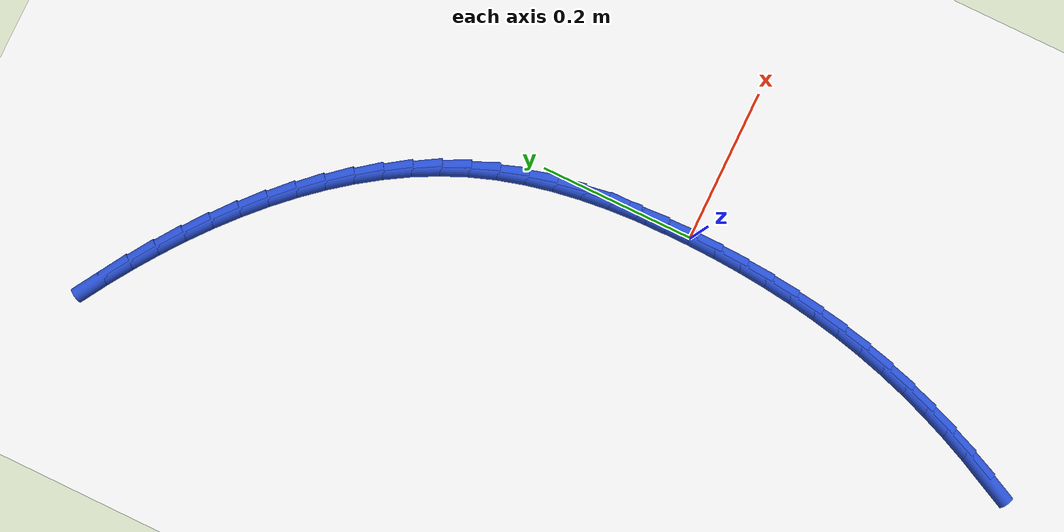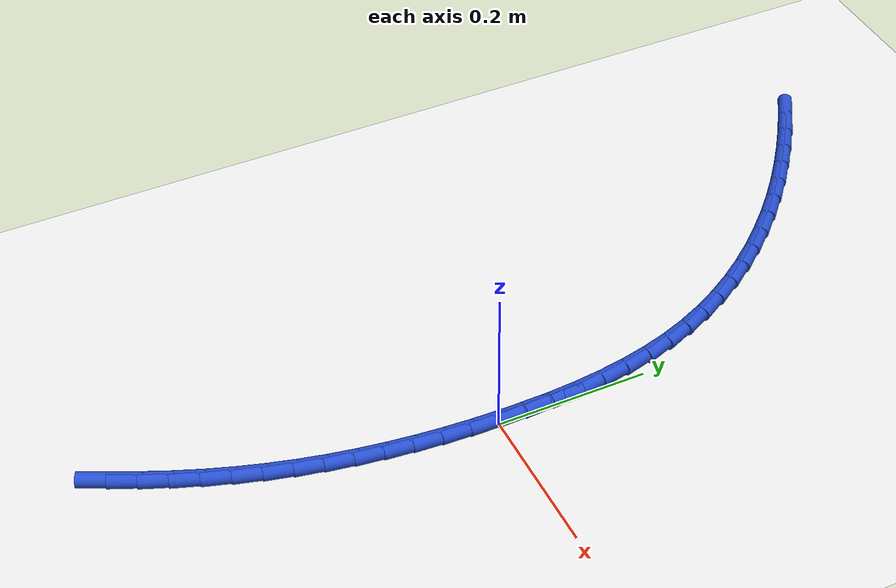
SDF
<sdf version="1.6">
 <world name="default">
  <model name="ground_plane">
   <static>1</static>
   <link name="link">
    <collision name="collision">
     <geometry><plane><normal>0 0 1</normal><size>100 100</size></plane></geometry>
     <surface><friction><ode><mu>100</mu><mu2>50</mu2></ode></friction></surface>
    </collision>
    <visual name="visual">
     <cast_shadows>0</cast_shadows>
     <geometry><plane><normal>0 0 1</normal><size>100 100</size></plane></geometry>
     <material>
      <script><uri>file://media/materials/scripts/gazebo.material</uri><name>Gazebo/WhiteGlow</name></script>
     </material>
    </visual>
   </link>
  </model>
  <model name="line">
   <link name="link_0">
    <pose>7.37257477290143e-18 3.469446951953614e-17 0.01 0 1.57 1.5680438948402413</pose>
    <collision name="collision">
     <geometry><cylinder><radius>0.01</radius><length>0.08</length></cylinder></geometry>
    </collision>
    <visual name="visual">
     <material>
      <script><name>Gazebo/Blue</name><uri>file://media/materials/scripts/gazebo.material</uri></script>
     </material>
     <geometry><cylinder><radius>0.01</radius><length>0.08</length></cylinder></geometry>
    </visual>
   </link>
   <link name="link_1">
    <pose>0.0001003149996280971 0.03644585877352556 0.01 0 1.57 -1.541195006216087</pose>
    <collision name="collision">
     <geometry><cylinder><radius>0.01</radius><length>0.08</length></cylinder></geometry>
    </collision>
    <visual name="visual">
     <material>
      <script><name>Gazebo/Blue</name><uri>file://media/materials/scripts/gazebo.material</uri></script>
     </material>
     <geometry><cylinder><radius>0.01</radius><length>0.08</length></cylinder></geometry>
    </visual>
   </link>
   <link name="link_2">
    <pose>-0.0009796142377771593 0.0729176705978343 0.01 0 1.57 -1.5036603185891484</pose>
    <collision name="collision">
     <geometry><cylinder><radius>0.01</radius><length>0.08</length></cylinder></geometry>
    </collision>
    <visual name="visual">
     <material>
      <script><name>Gazebo/Blue</name><uri>file://media/materials/scripts/gazebo.material</uri></script>
     </material>
     <geometry><cylinder><radius>0.01</radius><length>0.08</length></cylinder></geometry>
    </visual>
   </link>
   <link name="link_3">
    <pose>-0.003423812057419353 0.10926961618761917 0.01 0 1.57 -1.4606070433337586</pose>
    <collision name="collision">
     <geometry><cylinder><radius>0.01</radius><length>0.08</length></cylinder></geometry>
    </collision>
    <visual name="visual">
     <material>
      <script><name>Gazebo/Blue</name><uri>file://media/materials/scripts/gazebo.material</uri></script>
     </material>
     <geometry><cylinder><radius>0.01</radius><length>0.08</length></cylinder></geometry>
    </visual>
   </link>
   <link name="link_4">
    <pose>-0.007416302804502077 0.14535587625757285 0.01 0 1.57 -1.411680642565094</pose>
    <collision name="collision">
     <geometry><cylinder><radius>0.01</radius><length>0.08</length></cylinder></geometry>
    </collision>
    <visual name="visual">
     <material>
      <script><name>Gazebo/Blue</name><uri>file://media/materials/scripts/gazebo.material</uri></script>
     </material>
     <geometry><cylinder><radius>0.01</radius><length>0.08</length></cylinder></geometry>
    </visual>
   </link>
   <link name="link_5">
    <pose>-0.013141110824228922 0.1810306315223883 0.01 0 1.57 -1.356547341380486</pose>
    <collision name="collision">
     <geometry><cylinder><radius>0.01</radius><length>0.08</length></cylinder></geometry>
    </collision>
    <visual name="visual">
     <material>
      <script><name>Gazebo/Blue</name><uri>file://media/materials/scripts/gazebo.material</uri></script>
     </material>
     <geometry><cylinder><radius>0.01</radius><length>0.08</length></cylinder></geometry>
    </visual>
   </link>
   <link name="link_6">
    <pose>-0.020782260461803488 0.2161480626967583 0.01 0 1.57 -1.294946770154717</pose>
    <collision name="collision">
     <geometry><cylinder><radius>0.01</radius><length>0.08</length></cylinder></geometry>
    </collision>
    <visual name="visual">
     <material>
      <script><name>Gazebo/Blue</name><uri>file://media/materials/scripts/gazebo.material</uri></script>
     </material>
     <geometry><cylinder><radius>0.01</radius><length>0.08</length></cylinder></geometry>
    </visual>
   </link>
   <link name="link_7">
    <pose>-0.030523776062429356 0.2505623504953757 0.01 0 1.57 -1.2268920229269533</pose>
    <collision name="collision">
     <geometry><cylinder><radius>0.01</radius><length>0.08</length></cylinder></geometry>
    </collision>
    <visual name="visual">
     <material>
      <script><name>Gazebo/Blue</name><uri>file://media/materials/scripts/gazebo.material</uri></script>
     </material>
     <geometry><cylinder><radius>0.01</radius><length>0.08</length></cylinder></geometry>
    </visual>
   </link>
   <link name="link_8">
    <pose>-0.04254536098203102 0.28412946136138806 0.01 0 1.57 -1.1567805826560806</pose>
    <collision name="collision">
     <geometry><cylinder><radius>0.01</radius><length>0.08</length></cylinder></geometry>
    </collision>
    <visual name="visual">
     <material>
      <script><name>Gazebo/Blue</name><uri>file://media/materials/scripts/gazebo.material</uri></script>
     </material>
     <geometry><cylinder><radius>0.01</radius><length>0.08</length></cylinder></geometry>
    </visual>
   </link>
   <link name="link_9">
    <pose>-0.05688533882825792 0.3167637895245334 0.01 0 1.57 -1.0900268088113938</pose>
    <collision name="collision">
     <geometry><cylinder><radius>0.01</radius><length>0.08</length></cylinder></geometry>
    </collision>
    <visual name="visual">
     <material>
      <script><name>Gazebo/Blue</name><uri>file://media/materials/scripts/gazebo.material</uri></script>
     </material>
     <geometry><cylinder><radius>0.01</radius><length>0.08</length></cylinder></geometry>
    </visual>
   </link>
   <link name="link_10">
    <pose>-0.07341243362507215 0.3484498193682118 0.01 0 1.57 -1.0271024939809505</pose>
    <collision name="collision">
     <geometry><cylinder><radius>0.01</radius><length>0.08</length></cylinder></geometry>
    </collision>
    <visual name="visual">
     <material>
      <script><name>Gazebo/Blue</name><uri>file://media/materials/scripts/gazebo.material</uri></script>
     </material>
     <geometry><cylinder><radius>0.01</radius><length>0.08</length></cylinder></geometry>
    </visual>
   </link>
   <link name="link_11">
    <pose>-0.09198534577649915 0.37917617772149675 0.01 0 1.57 -0.9680378404753012</pose>
    <collision name="collision">
     <geometry><cylinder><radius>0.01</radius><length>0.08</length></cylinder></geometry>
    </collision>
    <visual name="visual">
     <material>
      <script><name>Gazebo/Blue</name><uri>file://media/materials/scripts/gazebo.material</uri></script>
     </material>
     <geometry><cylinder><radius>0.01</radius><length>0.08</length></cylinder></geometry>
    </visual>
   </link>
   <link name="link_12">
    <pose>-0.1124627756865645 0.4089314914134619 0.01 0 1.57 -0.9127543947486471</pose>
    <collision name="collision">
     <geometry><cylinder><radius>0.01</radius><length>0.08</length></cylinder></geometry>
    </collision>
    <visual name="visual">
     <material>
      <script><name>Gazebo/Blue</name><uri>file://media/materials/scripts/gazebo.material</uri></script>
     </material>
     <geometry><cylinder><radius>0.01</radius><length>0.08</length></cylinder></geometry>
    </visual>
   </link>
   <link name="link_13">
    <pose>-0.13470342375929356 0.43770438727318056 0.01 0 1.57 -0.8610939117637058</pose>
    <collision name="collision">
     <geometry><cylinder><radius>0.01</radius><length>0.08</length></cylinder></geometry>
    </collision>
    <visual name="visual">
     <material>
      <script><name>Gazebo/Blue</name><uri>file://media/materials/scripts/gazebo.material</uri></script>
     </material>
     <geometry><cylinder><radius>0.01</radius><length>0.08</length></cylinder></geometry>
    </visual>
   </link>
   <link name="link_14">
    <pose>-0.15856599039871191 0.46548349212972634 0.01 0 1.57 -0.8128439553476126</pose>
    <collision name="collision">
     <geometry><cylinder><radius>0.01</radius><length>0.08</length></cylinder></geometry>
    </collision>
    <visual name="visual">
     <material>
      <script><name>Gazebo/Blue</name><uri>file://media/materials/scripts/gazebo.material</uri></script>
     </material>
     <geometry><cylinder><radius>0.01</radius><length>0.08</length></cylinder></geometry>
    </visual>
   </link>
   <link name="link_15">
    <pose>-0.183909176008845 0.49225743281217255 0.01 0 1.57 -0.7677588171883175</pose>
    <collision name="collision">
     <geometry><cylinder><radius>0.01</radius><length>0.08</length></cylinder></geometry>
    </collision>
    <visual name="visual">
     <material>
      <script><name>Gazebo/Blue</name><uri>file://media/materials/scripts/gazebo.material</uri></script>
     </material>
     <geometry><cylinder><radius>0.01</radius><length>0.08</length></cylinder></geometry>
    </visual>
   </link>
   <link name="link_16">
    <pose>-0.21059168099371825 0.5180148361495929 0.01 0 1.57 -0.7255754857384842</pose>
    <collision name="collision">
     <geometry><cylinder><radius>0.01</radius><length>0.08</length></cylinder></geometry>
    </collision>
    <visual name="visual">
     <material>
      <script><name>Gazebo/Blue</name><uri>file://media/materials/scripts/gazebo.material</uri></script>
     </material>
     <geometry><cylinder><radius>0.01</radius><length>0.08</length></cylinder></geometry>
    </visual>
   </link>
   <link name="link_17">
    <pose>-0.23847220575735723 0.5427443289710607 0.01 0 1.57 -0.6860250698542992</pose>
    <collision name="collision">
     <geometry><cylinder><radius>0.01</radius><length>0.08</length></cylinder></geometry>
    </collision>
    <visual name="visual">
     <material>
      <script><name>Gazebo/Blue</name><uri>file://media/materials/scripts/gazebo.material</uri></script>
     </material>
     <geometry><cylinder><radius>0.01</radius><length>0.08</length></cylinder></geometry>
    </visual>
   </link>
   <link name="link_18">
    <pose>-0.2674094507037874 0.5664345381056497 0.01 0 1.57 -0.6488403851450412</pose>
    <collision name="collision">
     <geometry><cylinder><radius>0.01</radius><length>0.08</length></cylinder></geometry>
    </collision>
    <visual name="visual">
     <material>
      <script><name>Gazebo/Blue</name><uri>file://media/materials/scripts/gazebo.material</uri></script>
     </material>
     <geometry><cylinder><radius>0.01</radius><length>0.08</length></cylinder></geometry>
    </visual>
   </link>
   <link name="link_19">
    <pose>-0.2972621162370341 0.589074090382433 0.01 0 1.57 -0.6137604726472918</pose>
    <collision name="collision">
     <geometry><cylinder><radius>0.01</radius><length>0.08</length></cylinder></geometry>
    </collision>
    <visual name="visual">
     <material>
      <script><name>Gazebo/Blue</name><uri>file://media/materials/scripts/gazebo.material</uri></script>
     </material>
     <geometry><cylinder><radius>0.01</radius><length>0.08</length></cylinder></geometry>
    </visual>
   </link>
   <link name="link_20">
    <pose>-0.327888902761123 0.6106516126304845 0.01 0 1.57 -0.5805327473783956</pose>
    <collision name="collision">
     <geometry><cylinder><radius>0.01</radius><length>0.08</length></cylinder></geometry>
    </collision>
    <visual name="visual">
     <material>
      <script><name>Gazebo/Blue</name><uri>file://media/materials/scripts/gazebo.material</uri></script>
     </material>
     <geometry><cylinder><radius>0.01</radius><length>0.08</length></cylinder></geometry>
    </visual>
   </link>
   <link name="link_21">
    <pose>-0.35914851068007947 0.6311557316788774 0.01 0 1.57 -0.5489133423862994</pose>
    <collision name="collision">
     <geometry><cylinder><radius>0.01</radius><length>0.08</length></cylinder></geometry>
    </collision>
    <visual name="visual">
     <material>
      <script><name>Gazebo/Blue</name><uri>file://media/materials/scripts/gazebo.material</uri></script>
     </material>
     <geometry><cylinder><radius>0.01</radius><length>0.08</length></cylinder></geometry>
    </visual>
   </link>
   <link name="link_217">
    <pose>-0.10842070308020747 -0.45273569907744426 0.01 0 1.57 1.1189467482211832</pose>
    <collision name="collision">
     <geometry><cylinder><radius>0.01</radius><length>0.08</length></cylinder></geometry>
    </collision>
    <visual name="visual">
     <material>
      <script><name>Gazebo/Blue</name><uri>file://media/materials/scripts/gazebo.material</uri></script>
     </material>
     <geometry><cylinder><radius>0.01</radius><length>0.08</length></cylinder></geometry>
    </visual>
   </link>
   <link name="link_218">
    <pose>-0.09266001061775382 -0.420262075236773 0.01 0 1.57 1.154462250749617</pose>
    <collision name="collision">
     <geometry><cylinder><radius>0.01</radius><length>0.08</length></cylinder></geometry>
    </collision>
    <visual name="visual">
     <material>
      <script><name>Gazebo/Blue</name><uri>file://media/materials/scripts/gazebo.material</uri></script>
     </material>
     <geometry><cylinder><radius>0.01</radius><length>0.08</length></cylinder></geometry>
    </visual>
   </link>
   <link name="link_219">
    <pose>-0.07801158600465324 -0.387134536664691 0.01 0 1.57 1.1903571182138484</pose>
    <collision name="collision">
     <geometry><cylinder><radius>0.01</radius><length>0.08</length></cylinder></geometry>
    </collision>
    <visual name="visual">
     <material>
      <script><name>Gazebo/Blue</name><uri>file://media/materials/scripts/gazebo.material</uri></script>
     </material>
     <geometry><cylinder><radius>0.01</radius><length>0.08</length></cylinder></geometry>
    </visual>
   </link>
   <link name="link_220">
    <pose>-0.06453855433324282 -0.35344539539705466 0.01 0 1.57 1.2268620421130139</pose>
    <collision name="collision">
     <geometry><cylinder><radius>0.01</radius><length>0.08</length></cylinder></geometry>
    </collision>
    <visual name="visual">
     <material>
      <script><name>Gazebo/Blue</name><uri>file://media/materials/scripts/gazebo.material</uri></script>
     </material>
     <geometry><cylinder><radius>0.01</radius><length>0.08</length></cylinder></geometry>
    </visual>
   </link>
   <link name="link_221">
    <pose>-0.05230404069585842 -0.3192869634697178 0.01 0 1.57 1.264207982428153</pose>
    <collision name="collision">
     <geometry><cylinder><radius>0.01</radius><length>0.08</length></cylinder></geometry>
    </collision>
    <visual name="visual">
     <material>
      <script><name>Gazebo/Blue</name><uri>file://media/materials/scripts/gazebo.material</uri></script>
     </material>
     <geometry><cylinder><radius>0.01</radius><length>0.08</length></cylinder></geometry>
    </visual>
   </link>
   <link name="link_222">
    <pose>-0.04137117018483634 -0.284751552918535 0.01 0 1.57 1.3025519569184099</pose>
    <collision name="collision">
     <geometry><cylinder><radius>0.01</radius><length>0.08</length></cylinder></geometry>
    </collision>
    <visual name="visual">
     <material>
      <script><name>Gazebo/Blue</name><uri>file://media/materials/scripts/gazebo.material</uri></script>
     </material>
     <geometry><cylinder><radius>0.01</radius><length>0.08</length></cylinder></geometry>
    </visual>
   </link>
   <link name="link_223">
    <pose>-0.031799512241080644 -0.24992892935940575 0.01 0 1.57 1.340763010968189</pose>
    <collision name="collision">
     <geometry><cylinder><radius>0.01</radius><length>0.08</length></cylinder></geometry>
    </collision>
    <visual name="visual">
     <material>
      <script><name>Gazebo/Blue</name><uri>file://media/materials/scripts/gazebo.material</uri></script>
     </material>
     <geometry><cylinder><radius>0.01</radius><length>0.08</length></cylinder></geometry>
    </visual>
   </link>
   <link name="link_224">
    <pose>-0.02358847470655176 -0.21486577299928591 0.01 0 1.57 1.3776933770010267</pose>
    <collision name="collision">
     <geometry><cylinder><radius>0.01</radius><length>0.08</length></cylinder></geometry>
    </collision>
    <visual name="visual">
     <material>
      <script><name>Gazebo/Blue</name><uri>file://media/materials/scripts/gazebo.material</uri></script>
     </material>
     <geometry><cylinder><radius>0.01</radius><length>0.08</length></cylinder></geometry>
    </visual>
   </link>
   <link name="link_225">
    <pose>-0.016687314169711753 -0.17957284765819653 0.01 0 1.57 1.4131989726395404</pose>
    <collision name="collision">
     <geometry><cylinder><radius>0.01</radius><length>0.08</length></cylinder></geometry>
    </collision>
    <visual name="visual">
     <material>
      <script><name>Gazebo/Blue</name><uri>file://media/materials/scripts/gazebo.material</uri></script>
     </material>
     <geometry><cylinder><radius>0.01</radius><length>0.08</length></cylinder></geometry>
    </visual>
   </link>
   <link name="link_226">
    <pose>-0.011043754446250774 -0.1440598194436174 0.01 0 1.57 1.447191038402897</pose>
    <collision name="collision">
     <geometry><cylinder><radius>0.01</radius><length>0.08</length></cylinder></geometry>
    </collision>
    <visual name="visual">
     <material>
      <script><name>Gazebo/Blue</name><uri>file://media/materials/scripts/gazebo.material</uri></script>
     </material>
     <geometry><cylinder><radius>0.01</radius><length>0.08</length></cylinder></geometry>
    </visual>
   </link>
   <link name="link_227">
    <pose>-0.006605519351858966 -0.10833635446302838 0.01 0 1.57 1.479602328572471</pose>
    <collision name="collision">
     <geometry><cylinder><radius>0.01</radius><length>0.08</length></cylinder></geometry>
    </collision>
    <visual name="visual">
     <material>
      <script><name>Gazebo/Blue</name><uri>file://media/materials/scripts/gazebo.material</uri></script>
     </material>
     <geometry><cylinder><radius>0.01</radius><length>0.08</length></cylinder></geometry>
    </visual>
   </link>
   <link name="link_228">
    <pose>-0.0033203327022264034 -0.07241211882390845 0.01 0 1.57 1.5103855313569823</pose>
    <collision name="collision">
     <geometry><cylinder><radius>0.01</radius><length>0.08</length></cylinder></geometry>
    </collision>
    <visual name="visual">
     <material>
      <script><name>Gazebo/Blue</name><uri>file://media/materials/scripts/gazebo.material</uri></script>
     </material>
     <geometry><cylinder><radius>0.01</radius><length>0.08</length></cylinder></geometry>
    </visual>
   </link>
   <link name="link_229">
    <pose>-0.0011359183130433936 -0.03629677863373931 0.01 0 1.57 1.5395112448716832</pose>
    <collision name="collision">
     <geometry><cylinder><radius>0.01</radius><length>0.08</length></cylinder></geometry>
    </collision>
    <visual name="visual">
     <material>
      <script><name>Gazebo/Blue</name><uri>file://media/materials/scripts/gazebo.material</uri></script>
     </material>
     <geometry><cylinder><radius>0.01</radius><length>0.08</length></cylinder></geometry>
    </visual>
   </link>
   <link name="link_230">
    <pose>1.6479873021779667e-17 1.249000902703301e-16 0.01 0 1.57 1.5669656909676686</pose>
    <collision name="collision">
     <geometry><cylinder><radius>0.01</radius><length>0.08</length></cylinder></geometry>
    </collision>
    <visual name="visual">
     <material>
      <script><name>Gazebo/Blue</name><uri>file://media/materials/scripts/gazebo.material</uri></script>
     </material>
     <geometry><cylinder><radius>0.01</radius><length>0.08</length></cylinder></geometry>
    </visual>
   </link>
   <link name="link_231">
    <pose>0.00013969842121368085 0.03646855096982999 0.01 0 1.57 -1.5488443292692469</pose>
    <collision name="collision">
     <geometry><cylinder><radius>0.01</radius><length>0.08</length></cylinder></geometry>
    </collision>
    <visual name="visual">
     <material>
      <script><name>Gazebo/Blue</name><uri>file://media/materials/scripts/gazebo.material</uri></script>
     </material>
     <geometry><cylinder><radius>0.01</radius><length>0.08</length></cylinder></geometry>
    </visual>
   </link>
   <link name="link_232">
    <pose>-0.0006645468650925412 0.07309920816827042 0.01 0 1.57 -1.5617055503678783</pose>
    <collision name="collision">
     <geometry><cylinder><radius>0.01</radius><length>0.08</length></cylinder></geometry>
    </collision>
    <visual name="visual">
     <material>
      <script><name>Gazebo/Blue</name><uri>file://media/materials/scripts/gazebo.material</uri></script>
     </material>
     <geometry><cylinder><radius>0.01</radius><length>0.08</length></cylinder></geometry>
    </visual>
   </link>
  </model>
 </world>
</sdf>
